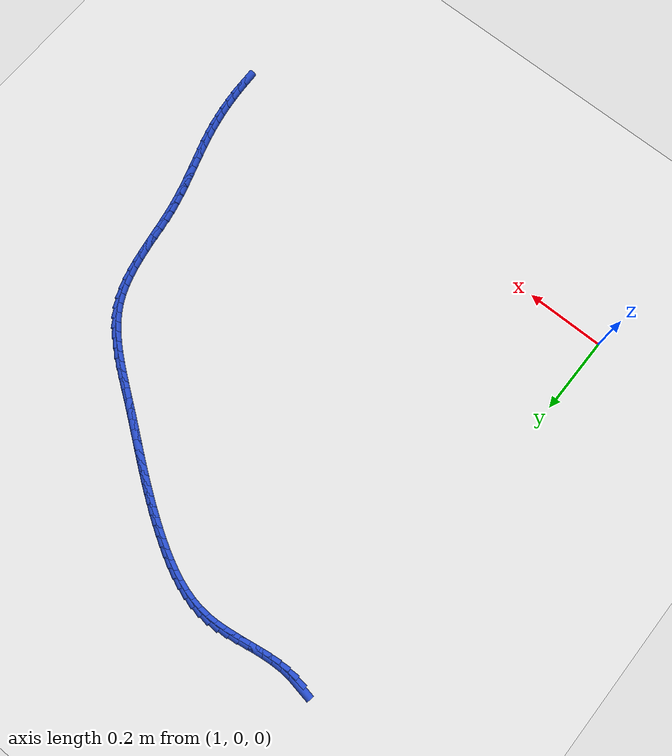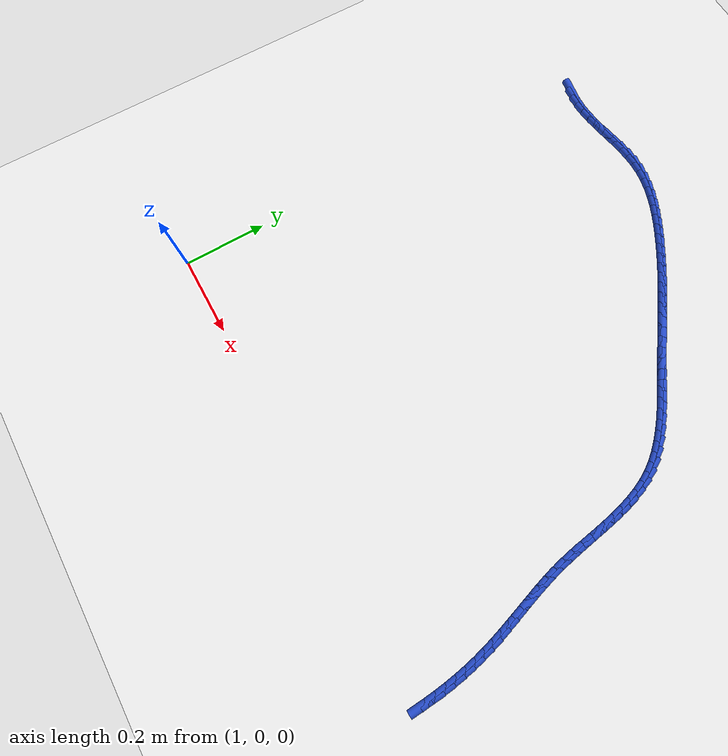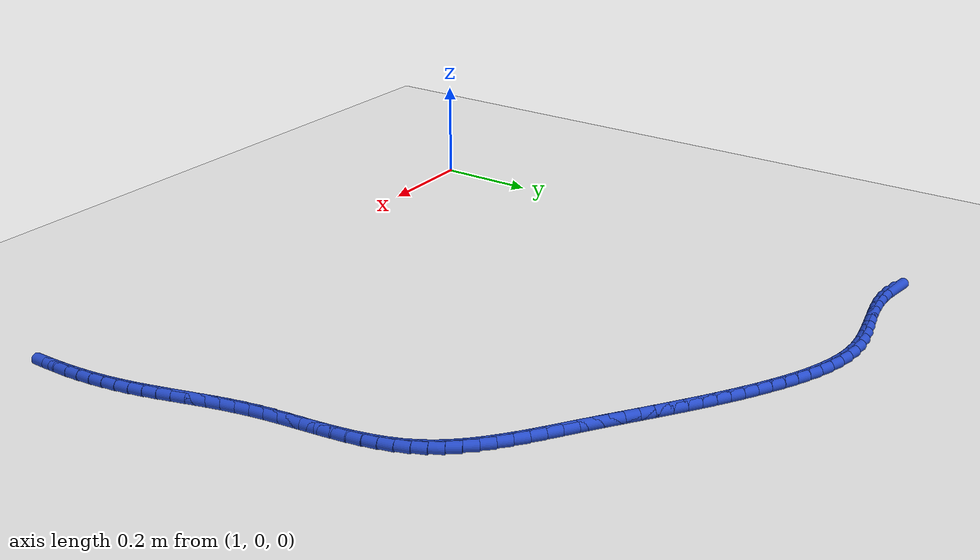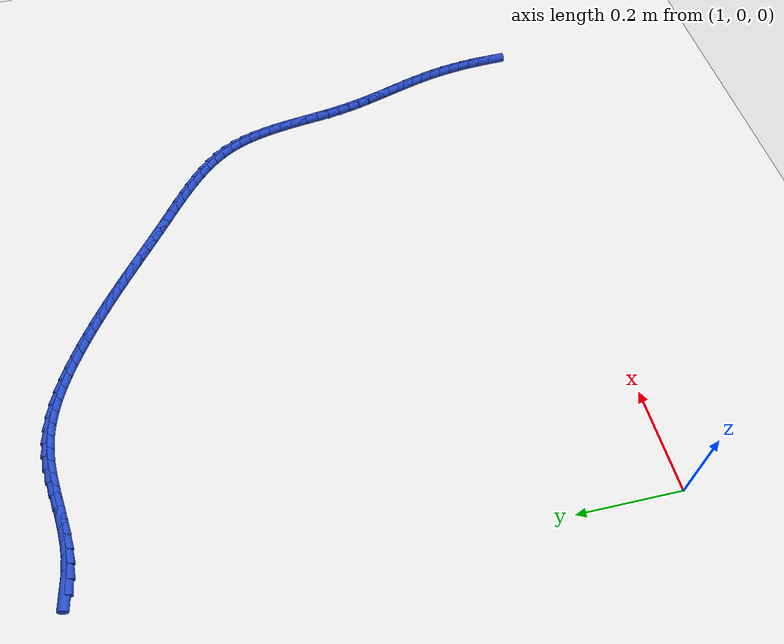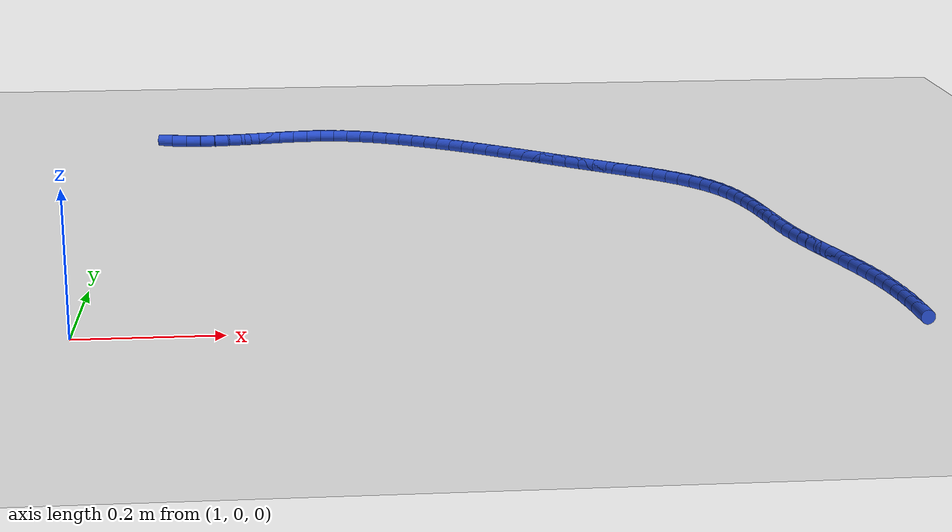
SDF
<sdf version="1.6">
 <world name="default">
  <model name="ground_plane">
   <static>1</static>
   <link name="link">
    <collision name="collision">
     <geometry><plane><normal>0 0 1</normal><size>100 100</size></plane></geometry>
     <surface><friction><ode><mu>100</mu><mu2>50</mu2></ode></friction></surface>
    </collision>
    <visual name="visual">
     <cast_shadows>0</cast_shadows>
     <geometry><plane><normal>0 0 1</normal><size>100 100</size></plane></geometry>
     <material>
      <script><uri>file://media/materials/scripts/gazebo.material</uri><name>Gazebo/WhiteGlow</name></script>
     </material>
    </visual>
   </link>
  </model>
  <model name="line">
   <link name="link_67">
    <pose>1.0657967718095103 1.0612530935548805 0.01 0 1.57 -0.163326018810447</pose>
    <collision name="collision">
     <geometry><cylinder><radius>0.01</radius><length>0.08</length></cylinder></geometry>
    </collision>
    <visual name="visual">
     <material>
      <script><name>Gazebo/Blue</name><uri>file://media/materials/scripts/gazebo.material</uri></script>
     </material>
     <geometry><cylinder><radius>0.01</radius><length>0.08</length></cylinder></geometry>
    </visual>
   </link>
   <link name="link_68">
    <pose>1.0908046888551215 1.0571319402369077 0.01 0 1.57 -0.052604988895848644</pose>
    <collision name="collision">
     <geometry><cylinder><radius>0.01</radius><length>0.08</length></cylinder></geometry>
    </collision>
    <visual name="visual">
     <material>
      <script><name>Gazebo/Blue</name><uri>file://media/materials/scripts/gazebo.material</uri></script>
     </material>
     <geometry><cylinder><radius>0.01</radius><length>0.08</length></cylinder></geometry>
    </visual>
   </link>
   <link name="link_69">
    <pose>1.1160145634118857 1.0558045504179205 0.01 0 1.57 0.0354385753306904</pose>
    <collision name="collision">
     <geometry><cylinder><radius>0.01</radius><length>0.08</length></cylinder></geometry>
    </collision>
    <visual name="visual">
     <material>
      <script><name>Gazebo/Blue</name><uri>file://media/materials/scripts/gazebo.material</uri></script>
     </material>
     <geometry><cylinder><radius>0.01</radius><length>0.08</length></cylinder></geometry>
    </visual>
   </link>
   <link name="link_70">
    <pose>1.1413829994484728 1.056703948196631 0.01 0 1.57 0.10009015704699996</pose>
    <collision name="collision">
     <geometry><cylinder><radius>0.01</radius><length>0.08</length></cylinder></geometry>
    </collision>
    <visual name="visual">
     <material>
      <script><name>Gazebo/Blue</name><uri>file://media/materials/scripts/gazebo.material</uri></script>
     </material>
     <geometry><cylinder><radius>0.01</radius><length>0.08</length></cylinder></geometry>
    </visual>
   </link>
   <link name="link_71">
    <pose>1.1668666009335533 1.059263157671752 0.01 0 1.57 0.1419460630791456</pose>
    <collision name="collision">
     <geometry><cylinder><radius>0.01</radius><length>0.08</length></cylinder></geometry>
    </collision>
    <visual name="visual">
     <material>
      <script><name>Gazebo/Blue</name><uri>file://media/materials/scripts/gazebo.material</uri></script>
     </material>
     <geometry><cylinder><radius>0.01</radius><length>0.08</length></cylinder></geometry>
    </visual>
   </link>
   <link name="link_72">
    <pose>1.1924219718357978 1.0629152029419962 0.01 0 1.57 0.16187425932820532</pose>
    <collision name="collision">
     <geometry><cylinder><radius>0.01</radius><length>0.08</length></cylinder></geometry>
    </collision>
    <visual name="visual">
     <material>
      <script><name>Gazebo/Blue</name><uri>file://media/materials/scripts/gazebo.material</uri></script>
     </material>
     <geometry><cylinder><radius>0.01</radius><length>0.08</length></cylinder></geometry>
    </visual>
   </link>
   <link name="link_73">
    <pose>1.2180057161238764 1.0670931081060764 0.01 0 1.57 0.1604010717937389</pose>
    <collision name="collision">
     <geometry><cylinder><radius>0.01</radius><length>0.08</length></cylinder></geometry>
    </collision>
    <visual name="visual">
     <material>
      <script><name>Gazebo/Blue</name><uri>file://media/materials/scripts/gazebo.material</uri></script>
     </material>
     <geometry><cylinder><radius>0.01</radius><length>0.08</length></cylinder></geometry>
    </visual>
   </link>
   <link name="link_74">
    <pose>1.2435744377664593 1.0712298972627052 0.01 0 1.57 0.13745217122147418</pose>
    <collision name="collision">
     <geometry><cylinder><radius>0.01</radius><length>0.08</length></cylinder></geometry>
    </collision>
    <visual name="visual">
     <material>
      <script><name>Gazebo/Blue</name><uri>file://media/materials/scripts/gazebo.material</uri></script>
     </material>
     <geometry><cylinder><radius>0.01</radius><length>0.08</length></cylinder></geometry>
    </visual>
   </link>
   <link name="link_75">
    <pose>1.2690847407322174 1.0747585945105953 0.01 0 1.57 0.09236803059131285</pose>
    <collision name="collision">
     <geometry><cylinder><radius>0.01</radius><length>0.08</length></cylinder></geometry>
    </collision>
    <visual name="visual">
     <material>
      <script><name>Gazebo/Blue</name><uri>file://media/materials/scripts/gazebo.material</uri></script>
     </material>
     <geometry><cylinder><radius>0.01</radius><length>0.08</length></cylinder></geometry>
    </visual>
   </link>
   <link name="link_76">
    <pose>1.2944932289898206 1.0771122239484594 0.01 0 1.57 0.02420375957399733</pose>
    <collision name="collision">
     <geometry><cylinder><radius>0.01</radius><length>0.08</length></cylinder></geometry>
    </collision>
    <visual name="visual">
     <material>
      <script><name>Gazebo/Blue</name><uri>file://media/materials/scripts/gazebo.material</uri></script>
     </material>
     <geometry><cylinder><radius>0.01</radius><length>0.08</length></cylinder></geometry>
    </visual>
   </link>
   <link name="link_77">
    <pose>1.3197565065079386 1.0777238096750101 0.01 0 1.57 -0.06649448323543133</pose>
    <collision name="collision">
     <geometry><cylinder><radius>0.01</radius><length>0.08</length></cylinder></geometry>
    </collision>
    <visual name="visual">
     <material>
      <script><name>Gazebo/Blue</name><uri>file://media/materials/scripts/gazebo.material</uri></script>
     </material>
     <geometry><cylinder><radius>0.01</radius><length>0.08</length></cylinder></geometry>
    </visual>
   </link>
   <link name="link_78">
    <pose>1.3448314190899777 1.076054004571463 0.01 0 1.57 -0.16142711639501295</pose>
    <collision name="collision">
     <geometry><cylinder><radius>0.01</radius><length>0.08</length></cylinder></geometry>
    </collision>
    <visual name="visual">
     <material>
      <script><name>Gazebo/Blue</name><uri>file://media/materials/scripts/gazebo.material</uri></script>
     </material>
     <geometry><cylinder><radius>0.01</radius><length>0.08</length></cylinder></geometry>
    </visual>
   </link>
   <link name="link_79">
    <pose>1.3696787015859937 1.0720077716557193 0.01 0 1.57 -0.24548618376894532</pose>
    <collision name="collision">
     <geometry><cylinder><radius>0.01</radius><length>0.08</length></cylinder></geometry>
    </collision>
    <visual name="visual">
     <material>
      <script><name>Gazebo/Blue</name><uri>file://media/materials/scripts/gazebo.material</uri></script>
     </material>
     <geometry><cylinder><radius>0.01</radius><length>0.08</length></cylinder></geometry>
    </visual>
   </link>
   <link name="link_80">
    <pose>1.3942622273056355 1.0658486321052978 0.01 0 1.57 -0.31817789167550947</pose>
    <collision name="collision">
     <geometry><cylinder><radius>0.01</radius><length>0.08</length></cylinder></geometry>
    </collision>
    <visual name="visual">
     <material>
      <script><name>Gazebo/Blue</name><uri>file://media/materials/scripts/gazebo.material</uri></script>
     </material>
     <geometry><cylinder><radius>0.01</radius><length>0.08</length></cylinder></geometry>
    </visual>
   </link>
   <link name="link_81">
    <pose>1.418545959108762 1.0578503378997623 0.01 0 1.57 -0.37994960598173194</pose>
    <collision name="collision">
     <geometry><cylinder><radius>0.01</radius><length>0.08</length></cylinder></geometry>
    </collision>
    <visual name="visual">
     <material>
      <script><name>Gazebo/Blue</name><uri>file://media/materials/scripts/gazebo.material</uri></script>
     </material>
     <geometry><cylinder><radius>0.01</radius><length>0.08</length></cylinder></geometry>
    </visual>
   </link>
   <link name="link_82">
    <pose>1.442493859855232 1.0482866410186773 0.01 0 1.57 -0.43150180645367564</pose>
    <collision name="collision">
     <geometry><cylinder><radius>0.01</radius><length>0.08</length></cylinder></geometry>
    </collision>
    <visual name="visual">
     <material>
      <script><name>Gazebo/Blue</name><uri>file://media/materials/scripts/gazebo.material</uri></script>
     </material>
     <geometry><cylinder><radius>0.01</radius><length>0.08</length></cylinder></geometry>
    </visual>
   </link>
   <link name="link_83">
    <pose>1.4660698924049045 1.0374312934416057 0.01 0 1.57 -0.4735832094723356</pose>
    <collision name="collision">
     <geometry><cylinder><radius>0.01</radius><length>0.08</length></cylinder></geometry>
    </collision>
    <visual name="visual">
     <material>
      <script><name>Gazebo/Blue</name><uri>file://media/materials/scripts/gazebo.material</uri></script>
     </material>
     <geometry><cylinder><radius>0.01</radius><length>0.08</length></cylinder></geometry>
    </visual>
   </link>
   <link name="link_84">
    <pose>1.4892380196176391 1.0255580471481125 0.01 0 1.57 -0.5068579016628197</pose>
    <collision name="collision">
     <geometry><cylinder><radius>0.01</radius><length>0.08</length></cylinder></geometry>
    </collision>
    <visual name="visual">
     <material>
      <script><name>Gazebo/Blue</name><uri>file://media/materials/scripts/gazebo.material</uri></script>
     </material>
     <geometry><cylinder><radius>0.01</radius><length>0.08</length></cylinder></geometry>
    </visual>
   </link>
   <link name="link_85">
    <pose>1.511962204353295 1.012940654117761 0.01 0 1.57 -0.532018254938925</pose>
    <collision name="collision">
     <geometry><cylinder><radius>0.01</radius><length>0.08</length></cylinder></geometry>
    </collision>
    <visual name="visual">
     <material>
      <script><name>Gazebo/Blue</name><uri>file://media/materials/scripts/gazebo.material</uri></script>
     </material>
     <geometry><cylinder><radius>0.01</radius><length>0.08</length></cylinder></geometry>
    </visual>
   </link>
   <link name="link_86">
    <pose>1.534209465067876 0.9998452191120615 0.01 0 1.57 -0.5525723637971851</pose>
    <collision name="collision">
     <geometry><cylinder><radius>0.01</radius><length>0.08</length></cylinder></geometry>
    </collision>
    <visual name="visual">
     <material>
      <script><name>Gazebo/Blue</name><uri>file://media/materials/scripts/gazebo.material</uri></script>
     </material>
     <geometry><cylinder><radius>0.01</radius><length>0.08</length></cylinder></geometry>
    </visual>
   </link>
   <link name="link_87">
    <pose>1.555998235010774 0.9864091714664015 0.01 0 1.57 -0.571155265082946</pose>
    <collision name="collision">
     <geometry><cylinder><radius>0.01</radius><length>0.08</length></cylinder></geometry>
    </collision>
    <visual name="visual">
     <material>
      <script><name>Gazebo/Blue</name><uri>file://media/materials/scripts/gazebo.material</uri></script>
     </material>
     <geometry><cylinder><radius>0.01</radius><length>0.08</length></cylinder></geometry>
    </visual>
   </link>
   <link name="link_88">
    <pose>1.5773896572800647 0.9726630508912654 0.01 0 1.57 -0.5877139115601648</pose>
    <collision name="collision">
     <geometry><cylinder><radius>0.01</radius><length>0.08</length></cylinder></geometry>
    </collision>
    <visual name="visual">
     <material>
      <script><name>Gazebo/Blue</name><uri>file://media/materials/scripts/gazebo.material</uri></script>
     </material>
     <geometry><cylinder><radius>0.01</radius><length>0.08</length></cylinder></geometry>
    </visual>
   </link>
   <link name="link_89">
    <pose>1.5984461707804634 0.9586341540913725 0.01 0 1.57 -0.6021352877129944</pose>
    <collision name="collision">
     <geometry><cylinder><radius>0.01</radius><length>0.08</length></cylinder></geometry>
    </collision>
    <visual name="visual">
     <material>
      <script><name>Gazebo/Blue</name><uri>file://media/materials/scripts/gazebo.material</uri></script>
     </material>
     <geometry><cylinder><radius>0.01</radius><length>0.08</length></cylinder></geometry>
    </visual>
   </link>
   <link name="link_90">
    <pose>1.6192302144166846 0.9443497777714427 0.01 0 1.57 -0.6143295985337573</pose>
    <collision name="collision">
     <geometry><cylinder><radius>0.01</radius><length>0.08</length></cylinder></geometry>
    </collision>
    <visual name="visual">
     <material>
      <script><name>Gazebo/Blue</name><uri>file://media/materials/scripts/gazebo.material</uri></script>
     </material>
     <geometry><cylinder><radius>0.01</radius><length>0.08</length></cylinder></geometry>
    </visual>
   </link>
   <link name="link_91">
    <pose>1.6398042270934419 0.9298372186361951 0.01 0 1.57 -0.6242300928528152</pose>
    <collision name="collision">
     <geometry><cylinder><radius>0.01</radius><length>0.08</length></cylinder></geometry>
    </collision>
    <visual name="visual">
     <material>
      <script><name>Gazebo/Blue</name><uri>file://media/materials/scripts/gazebo.material</uri></script>
     </material>
     <geometry><cylinder><radius>0.01</radius><length>0.08</length></cylinder></geometry>
    </visual>
   </link>
   <link name="link_92">
    <pose>1.6602306477154514 0.9151237733903489 0.01 0 1.57 -0.6317924586829639</pose>
    <collision name="collision">
     <geometry><cylinder><radius>0.01</radius><length>0.08</length></cylinder></geometry>
    </collision>
    <visual name="visual">
     <material>
      <script><name>Gazebo/Blue</name><uri>file://media/materials/scripts/gazebo.material</uri></script>
     </material>
     <geometry><cylinder><radius>0.01</radius><length>0.08</length></cylinder></geometry>
    </visual>
   </link>
   <link name="link_93">
    <pose>1.6805719151874274 0.9002367387386239 0.01 0 1.57 -0.6369939364894709</pose>
    <collision name="collision">
     <geometry><cylinder><radius>0.01</radius><length>0.08</length></cylinder></geometry>
    </collision>
    <visual name="visual">
     <material>
      <script><name>Gazebo/Blue</name><uri>file://media/materials/scripts/gazebo.material</uri></script>
     </material>
     <geometry><cylinder><radius>0.01</radius><length>0.08</length></cylinder></geometry>
    </visual>
   </link>
   <link name="link_94">
    <pose>1.7008904684140844 0.8852034113857394 0.01 0 1.57 -0.6398322785250471</pose>
    <collision name="collision">
     <geometry><cylinder><radius>0.01</radius><length>0.08</length></cylinder></geometry>
    </collision>
    <visual name="visual">
     <material>
      <script><name>Gazebo/Blue</name><uri>file://media/materials/scripts/gazebo.material</uri></script>
     </material>
     <geometry><cylinder><radius>0.01</radius><length>0.08</length></cylinder></geometry>
    </visual>
   </link>
   <link name="link_95">
    <pose>1.7212487463001371 0.8700510880364147 0.01 0 1.57 -0.6403246547230192</pose>
    <collision name="collision">
     <geometry><cylinder><radius>0.01</radius><length>0.08</length></cylinder></geometry>
    </collision>
    <visual name="visual">
     <material>
      <script><name>Gazebo/Blue</name><uri>file://media/materials/scripts/gazebo.material</uri></script>
     </material>
     <geometry><cylinder><radius>0.01</radius><length>0.08</length></cylinder></geometry>
    </visual>
   </link>
   <link name="link_96">
    <pose>1.7417091877503006 0.8548070653953695 0.01 0 1.57 -0.6385065730186528</pose>
    <collision name="collision">
     <geometry><cylinder><radius>0.01</radius><length>0.08</length></cylinder></geometry>
    </collision>
    <visual name="visual">
     <material>
      <script><name>Gazebo/Blue</name><uri>file://media/materials/scripts/gazebo.material</uri></script>
     </material>
     <geometry><cylinder><radius>0.01</radius><length>0.08</length></cylinder></geometry>
    </visual>
   </link>
   <link name="link_97">
    <pose>1.7623342316692892 0.8394986401673232 0.01 0 1.57 -0.6344308485921261</pose>
    <collision name="collision">
     <geometry><cylinder><radius>0.01</radius><length>0.08</length></cylinder></geometry>
    </collision>
    <visual name="visual">
     <material>
      <script><name>Gazebo/Blue</name><uri>file://media/materials/scripts/gazebo.material</uri></script>
     </material>
     <geometry><cylinder><radius>0.01</radius><length>0.08</length></cylinder></geometry>
    </visual>
   </link>
   <link name="link_98">
    <pose>1.7831863169618176 0.824153109056995 0.01 0 1.57 -0.628608501689054</pose>
    <collision name="collision">
     <geometry><cylinder><radius>0.01</radius><length>0.08</length></cylinder></geometry>
    </collision>
    <visual name="visual">
     <material>
      <script><name>Gazebo/Blue</name><uri>file://media/materials/scripts/gazebo.material</uri></script>
     </material>
     <geometry><cylinder><radius>0.01</radius><length>0.08</length></cylinder></geometry>
    </visual>
   </link>
   <link name="link_99">
    <pose>1.804316000010717 0.8087921325309066 0.01 0 1.57 -0.6275224753653147</pose>
    <collision name="collision">
     <geometry><cylinder><radius>0.01</radius><length>0.08</length></cylinder></geometry>
    </collision>
    <visual name="visual">
     <material>
      <script><name>Gazebo/Blue</name><uri>file://media/materials/scripts/gazebo.material</uri></script>
     </material>
     <geometry><cylinder><radius>0.01</radius><length>0.08</length></cylinder></geometry>
    </visual>
   </link>
   <link name="link_100">
    <pose>1.8255994653065617 0.7933546612125523 0.01 0 1.57 -0.6359704507851976</pose>
    <collision name="collision">
     <geometry><cylinder><radius>0.01</radius><length>0.08</length></cylinder></geometry>
    </collision>
    <visual name="visual">
     <material>
      <script><name>Gazebo/Blue</name><uri>file://media/materials/scripts/gazebo.material</uri></script>
     </material>
     <geometry><cylinder><radius>0.01</radius><length>0.08</length></cylinder></geometry>
    </visual>
   </link>
   <link name="link_101">
    <pose>1.8467803963566243 0.7777167965162552 0.01 0 1.57 -0.6541634719165439</pose>
    <collision name="collision">
     <geometry><cylinder><radius>0.01</radius><length>0.08</length></cylinder></geometry>
    </collision>
    <visual name="visual">
     <material>
      <script><name>Gazebo/Blue</name><uri>file://media/materials/scripts/gazebo.material</uri></script>
     </material>
     <geometry><cylinder><radius>0.01</radius><length>0.08</length></cylinder></geometry>
    </visual>
   </link>
   <link name="link_102">
    <pose>1.8675991667753065 0.7617530698744102 0.01 0 1.57 -0.6824658990812795</pose>
    <collision name="collision">
     <geometry><cylinder><radius>0.01</radius><length>0.08</length></cylinder></geometry>
    </collision>
    <visual name="visual">
     <material>
      <script><name>Gazebo/Blue</name><uri>file://media/materials/scripts/gazebo.material</uri></script>
     </material>
     <geometry><cylinder><radius>0.01</radius><length>0.08</length></cylinder></geometry>
    </visual>
   </link>
   <link name="link_103">
    <pose>1.887796150177008 0.7453380127194101 0.01 0 1.57 -0.7214842749751662</pose>
    <collision name="collision">
     <geometry><cylinder><radius>0.01</radius><length>0.08</length></cylinder></geometry>
    </collision>
    <visual name="visual">
     <material>
      <script><name>Gazebo/Blue</name><uri>file://media/materials/scripts/gazebo.material</uri></script>
     </material>
     <geometry><cylinder><radius>0.01</radius><length>0.08</length></cylinder></geometry>
    </visual>
   </link>
   <link name="link_104">
    <pose>1.9071117201761298 0.7283461564836493 0.01 0 1.57 -0.7720054778882527</pose>
    <collision name="collision">
     <geometry><cylinder><radius>0.01</radius><length>0.08</length></cylinder></geometry>
    </collision>
    <visual name="visual">
     <material>
      <script><name>Gazebo/Blue</name><uri>file://media/materials/scripts/gazebo.material</uri></script>
     </material>
     <geometry><cylinder><radius>0.01</radius><length>0.08</length></cylinder></geometry>
    </visual>
   </link>
   <link name="link_105">
    <pose>1.9252862503870718 0.7106520325995217 0.01 0 1.57 -0.8348820350865378</pose>
    <collision name="collision">
     <geometry><cylinder><radius>0.01</radius><length>0.08</length></cylinder></geometry>
    </collision>
    <visual name="visual">
     <material>
      <script><name>Gazebo/Blue</name><uri>file://media/materials/scripts/gazebo.material</uri></script>
     </material>
     <geometry><cylinder><radius>0.01</radius><length>0.08</length></cylinder></geometry>
    </visual>
   </link>
   <link name="link_106">
    <pose>1.9420601144242362 0.6921301724994214 0.01 0 1.57 -0.9108322846294211</pose>
    <collision name="collision">
     <geometry><cylinder><radius>0.01</radius><length>0.08</length></cylinder></geometry>
    </collision>
    <visual name="visual">
     <material>
      <script><name>Gazebo/Blue</name><uri>file://media/materials/scripts/gazebo.material</uri></script>
     </material>
     <geometry><cylinder><radius>0.01</radius><length>0.08</length></cylinder></geometry>
    </visual>
   </link>
   <link name="link_107">
    <pose>1.9571736859020223 0.6726551076157421 0.01 0 1.57 -1.0001255537962555</pose>
    <collision name="collision">
     <geometry><cylinder><radius>0.01</radius><length>0.08</length></cylinder></geometry>
    </collision>
    <visual name="visual">
     <material>
      <script><name>Gazebo/Blue</name><uri>file://media/materials/scripts/gazebo.material</uri></script>
     </material>
     <geometry><cylinder><radius>0.01</radius><length>0.08</length></cylinder></geometry>
    </visual>
   </link>
   <link name="link_108">
    <pose>1.9703674191430294 0.6521014099876165 0.01 0 1.57 -1.0968074893364088</pose>
    <collision name="collision">
     <geometry><cylinder><radius>0.01</radius><length>0.08</length></cylinder></geometry>
    </collision>
    <visual name="visual">
     <material>
      <script><name>Gazebo/Blue</name><uri>file://media/materials/scripts/gazebo.material</uri></script>
     </material>
     <geometry><cylinder><radius>0.01</radius><length>0.08</length></cylinder></geometry>
    </visual>
   </link>
   <link name="link_109">
    <pose>1.981498813119086 0.630402540361948 0.01 0 1.57 -1.183331613696243</pose>
    <collision name="collision">
     <geometry><cylinder><radius>0.01</radius><length>0.08</length></cylinder></geometry>
    </collision>
    <visual name="visual">
     <material>
      <script><name>Gazebo/Blue</name><uri>file://media/materials/scripts/gazebo.material</uri></script>
     </material>
     <geometry><cylinder><radius>0.01</radius><length>0.08</length></cylinder></geometry>
    </visual>
   </link>
   <link name="link_110">
    <pose>1.9907764128645757 0.6076685813912769 0.01 0 1.57 -1.255820362796635</pose>
    <collision name="collision">
     <geometry><cylinder><radius>0.01</radius><length>0.08</length></cylinder></geometry>
    </collision>
    <visual name="visual">
     <material>
      <script><name>Gazebo/Blue</name><uri>file://media/materials/scripts/gazebo.material</uri></script>
     </material>
     <geometry><cylinder><radius>0.01</radius><length>0.08</length></cylinder></geometry>
    </visual>
   </link>
   <link name="link_111">
    <pose>1.9984743009656232 0.5840425896552555 0.01 0 1.57 -1.3143248232830003</pose>
    <collision name="collision">
     <geometry><cylinder><radius>0.01</radius><length>0.08</length></cylinder></geometry>
    </collision>
    <visual name="visual">
     <material>
      <script><name>Gazebo/Blue</name><uri>file://media/materials/scripts/gazebo.material</uri></script>
     </material>
     <geometry><cylinder><radius>0.01</radius><length>0.08</length></cylinder></geometry>
    </visual>
   </link>
   <link name="link_112">
    <pose>2.0048665600083497 0.5596676217335347 0.01 0 1.57 -1.359409638927786</pose>
    <collision name="collision">
     <geometry><cylinder><radius>0.01</radius><length>0.08</length></cylinder></geometry>
    </collision>
    <visual name="visual">
     <material>
      <script><name>Gazebo/Blue</name><uri>file://media/materials/scripts/gazebo.material</uri></script>
     </material>
     <geometry><cylinder><radius>0.01</radius><length>0.08</length></cylinder></geometry>
    </visual>
   </link>
   <link name="link_113">
    <pose>2.0102272725788812 0.5346867342057676 0.01 0 1.57 -1.3918137235125843</pose>
    <collision name="collision">
     <geometry><cylinder><radius>0.01</radius><length>0.08</length></cylinder></geometry>
    </collision>
    <visual name="visual">
     <material>
      <script><name>Gazebo/Blue</name><uri>file://media/materials/scripts/gazebo.material</uri></script>
     </material>
     <geometry><cylinder><radius>0.01</radius><length>0.08</length></cylinder></geometry>
    </visual>
   </link>
   <link name="link_114">
    <pose>2.0148305212633404 0.5092429836516045 0.01 0 1.57 -1.4122281765429536</pose>
    <collision name="collision">
     <geometry><cylinder><radius>0.01</radius><length>0.08</length></cylinder></geometry>
    </collision>
    <visual name="visual">
     <material>
      <script><name>Gazebo/Blue</name><uri>file://media/materials/scripts/gazebo.material</uri></script>
     </material>
     <geometry><cylinder><radius>0.01</radius><length>0.08</length></cylinder></geometry>
    </visual>
   </link>
   <link name="link_115">
    <pose>2.018950388647852 0.48347942665069793 0.01 0 1.57 -1.4211704227515187</pose>
    <collision name="collision">
     <geometry><cylinder><radius>0.01</radius><length>0.08</length></cylinder></geometry>
    </collision>
    <visual name="visual">
     <material>
      <script><name>Gazebo/Blue</name><uri>file://media/materials/scripts/gazebo.material</uri></script>
     </material>
     <geometry><cylinder><radius>0.01</radius><length>0.08</length></cylinder></geometry>
    </visual>
   </link>
   <link name="link_116">
    <pose>2.0228609573185388 0.45753911978269923 0.01 0 1.57 -1.418923639977234</pose>
    <collision name="collision">
     <geometry><cylinder><radius>0.01</radius><length>0.08</length></cylinder></geometry>
    </collision>
    <visual name="visual">
     <material>
      <script><name>Gazebo/Blue</name><uri>file://media/materials/scripts/gazebo.material</uri></script>
     </material>
     <geometry><cylinder><radius>0.01</radius><length>0.08</length></cylinder></geometry>
    </visual>
   </link>
   <link name="link_117">
    <pose>2.026836309861525 0.43156511962726046 0.01 0 1.57 -1.4055180137649979</pose>
    <collision name="collision">
     <geometry><cylinder><radius>0.01</radius><length>0.08</length></cylinder></geometry>
    </collision>
    <visual name="visual">
     <material>
      <script><name>Gazebo/Blue</name><uri>file://media/materials/scripts/gazebo.material</uri></script>
     </material>
     <geometry><cylinder><radius>0.01</radius><length>0.08</length></cylinder></geometry>
    </visual>
   </link>
   <link name="link_118">
    <pose>2.031150528862935 0.4057004827640333 0.01 0 1.57 -1.3807424621480102</pose>
    <collision name="collision">
     <geometry><cylinder><radius>0.01</radius><length>0.08</length></cylinder></geometry>
    </collision>
    <visual name="visual">
     <material>
      <script><name>Gazebo/Blue</name><uri>file://media/materials/scripts/gazebo.material</uri></script>
     </material>
     <geometry><cylinder><radius>0.01</radius><length>0.08</length></cylinder></geometry>
    </visual>
   </link>
   <link name="link_119">
    <pose>2.036077696908891 0.3800882657726696 0.01 0 1.57 -1.3465278271291181</pose>
    <collision name="collision">
     <geometry><cylinder><radius>0.01</radius><length>0.08</length></cylinder></geometry>
    </collision>
    <visual name="visual">
     <material>
      <script><name>Gazebo/Blue</name><uri>file://media/materials/scripts/gazebo.material</uri></script>
     </material>
     <geometry><cylinder><radius>0.01</radius><length>0.08</length></cylinder></geometry>
    </visual>
   </link>
   <link name="link_120">
    <pose>2.0418355844360176 0.35484607305809335 0.01 0 1.57 -1.3154296922271171</pose>
    <collision name="collision">
     <geometry><cylinder><radius>0.01</radius><length>0.08</length></cylinder></geometry>
    </collision>
    <visual name="visual">
     <material>
      <script><name>Gazebo/Blue</name><uri>file://media/materials/scripts/gazebo.material</uri></script>
     </material>
     <geometry><cylinder><radius>0.01</radius><length>0.08</length></cylinder></geometry>
    </visual>
   </link>
   <link name="link_121">
    <pose>2.0483344535726196 0.32995252027656935 0.01 0 1.57 -1.291999431122512</pose>
    <collision name="collision">
     <geometry><cylinder><radius>0.01</radius><length>0.08</length></cylinder></geometry>
    </collision>
    <visual name="visual">
     <material>
      <script><name>Gazebo/Blue</name><uri>file://media/materials/scripts/gazebo.material</uri></script>
     </material>
     <geometry><cylinder><radius>0.01</radius><length>0.08</length></cylinder></geometry>
    </visual>
   </link>
   <link name="link_122">
    <pose>2.055380122969954 0.3053390163332344 0.01 0 1.57 -1.2764254644793167</pose>
    <collision name="collision">
     <geometry><cylinder><radius>0.01</radius><length>0.08</length></cylinder></geometry>
    </collision>
    <visual name="visual">
     <material>
      <script><name>Gazebo/Blue</name><uri>file://media/materials/scripts/gazebo.material</uri></script>
     </material>
     <geometry><cylinder><radius>0.01</radius><length>0.08</length></cylinder></geometry>
    </visual>
   </link>
   <link name="link_123">
    <pose>2.0627783256505228 0.2809369314304221 0.01 0 1.57 -1.2688340828303344</pose>
    <collision name="collision">
     <geometry><cylinder><radius>0.01</radius><length>0.08</length></cylinder></geometry>
    </collision>
    <visual name="visual">
     <material>
      <script><name>Gazebo/Blue</name><uri>file://media/materials/scripts/gazebo.material</uri></script>
     </material>
     <geometry><cylinder><radius>0.01</radius><length>0.08</length></cylinder></geometry>
    </visual>
   </link>
   <link name="link_124">
    <pose>2.070334794636828 0.25667763577046515 0.01 0 1.57 -1.2693204024454277</pose>
    <collision name="collision">
     <geometry><cylinder><radius>0.01</radius><length>0.08</length></cylinder></geometry>
    </collision>
    <visual name="visual">
     <material>
      <script><name>Gazebo/Blue</name><uri>file://media/materials/scripts/gazebo.material</uri></script>
     </material>
     <geometry><cylinder><radius>0.01</radius><length>0.08</length></cylinder></geometry>
    </visual>
   </link>
   <link name="link_125">
    <pose>2.0778552629513714 0.23249249955569742 0.01 0 1.57 -1.2779620858441052</pose>
    <collision name="collision">
     <geometry><cylinder><radius>0.01</radius><length>0.08</length></cylinder></geometry>
    </collision>
    <visual name="visual">
     <material>
      <script><name>Gazebo/Blue</name><uri>file://media/materials/scripts/gazebo.material</uri></script>
     </material>
     <geometry><cylinder><radius>0.01</radius><length>0.08</length></cylinder></geometry>
    </visual>
   </link>
   <link name="link_126">
    <pose>2.0851454636166555 0.20831289298845218 0.01 0 1.57 -1.2948177153433504</pose>
    <collision name="collision">
     <geometry><cylinder><radius>0.01</radius><length>0.08</length></cylinder></geometry>
    </collision>
    <visual name="visual">
     <material>
      <script><name>Gazebo/Blue</name><uri>file://media/materials/scripts/gazebo.material</uri></script>
     </material>
     <geometry><cylinder><radius>0.01</radius><length>0.08</length></cylinder></geometry>
    </visual>
   </link>
   <link name="link_127">
    <pose>2.0920111296551815 0.18407018627106286 0.01 0 1.57 -1.3199087886826952</pose>
    <collision name="collision">
     <geometry><cylinder><radius>0.01</radius><length>0.08</length></cylinder></geometry>
    </collision>
    <visual name="visual">
     <material>
      <script><name>Gazebo/Blue</name><uri>file://media/materials/scripts/gazebo.material</uri></script>
     </material>
     <geometry><cylinder><radius>0.01</radius><length>0.08</length></cylinder></geometry>
    </visual>
   </link>
   <link name="link_128">
    <pose>2.0982579940894523 0.15969574960586289 0.01 0 1.57 -1.3527486388668595</pose>
    <collision name="collision">
     <geometry><cylinder><radius>0.01</radius><length>0.08</length></cylinder></geometry>
    </collision>
    <visual name="visual">
     <material>
      <script><name>Gazebo/Blue</name><uri>file://media/materials/scripts/gazebo.material</uri></script>
     </material>
     <geometry><cylinder><radius>0.01</radius><length>0.08</length></cylinder></geometry>
    </visual>
   </link>
   <link name="link_129">
    <pose>2.103702159343512 0.1351249320520072 0.01 0 1.57 -1.3876846657250241</pose>
    <collision name="collision">
     <geometry><cylinder><radius>0.01</radius><length>0.08</length></cylinder></geometry>
    </collision>
    <visual name="visual">
     <material>
      <script><name>Gazebo/Blue</name><uri>file://media/materials/scripts/gazebo.material</uri></script>
     </material>
     <geometry><cylinder><radius>0.01</radius><length>0.08</length></cylinder></geometry>
    </visual>
   </link>
   <link name="link_130">
    <pose>2.1082913209036898 0.1103435764171465 0.01 0 1.57 -1.4208643708888586</pose>
    <collision name="collision">
     <geometry><cylinder><radius>0.01</radius><length>0.08</length></cylinder></geometry>
    </collision>
    <visual name="visual">
     <material>
      <script><name>Gazebo/Blue</name><uri>file://media/materials/scripts/gazebo.material</uri></script>
     </material>
     <geometry><cylinder><radius>0.01</radius><length>0.08</length></cylinder></geometry>
    </visual>
   </link>
   <link name="link_131">
    <pose>2.11206363205871 0.08537223519228612 0.01 0 1.57 -1.452207365599494</pose>
    <collision name="collision">
     <geometry><cylinder><radius>0.01</radius><length>0.08</length></cylinder></geometry>
    </collision>
    <visual name="visual">
     <material>
      <script><name>Gazebo/Blue</name><uri>file://media/materials/scripts/gazebo.material</uri></script>
     </material>
     <geometry><cylinder><radius>0.01</radius><length>0.08</length></cylinder></geometry>
    </visual>
   </link>
   <link name="link_132">
    <pose>2.1150590243752783 0.06023214321383469 0.01 0 1.57 -1.481723875254658</pose>
    <collision name="collision">
     <geometry><cylinder><radius>0.01</radius><length>0.08</length></cylinder></geometry>
    </collision>
    <visual name="visual">
     <material>
      <script><name>Gazebo/Blue</name><uri>file://media/materials/scripts/gazebo.material</uri></script>
     </material>
     <geometry><cylinder><radius>0.01</radius><length>0.08</length></cylinder></geometry>
    </visual>
   </link>
   <link name="link_133">
    <pose>2.1173174294201003 0.03494453531820098 0.01 0 1.57 -1.5094365975824346</pose>
    <collision name="collision">
     <geometry><cylinder><radius>0.01</radius><length>0.08</length></cylinder></geometry>
    </collision>
    <visual name="visual">
     <material>
      <script><name>Gazebo/Blue</name><uri>file://media/materials/scripts/gazebo.material</uri></script>
     </material>
     <geometry><cylinder><radius>0.01</radius><length>0.08</length></cylinder></geometry>
    </visual>
   </link>
   <link name="link_134">
    <pose>2.1188787787598824 0.009530646341794055 0.01 0 1.57 -1.5353776445390896</pose>
    <collision name="collision">
     <geometry><cylinder><radius>0.01</radius><length>0.08</length></cylinder></geometry>
    </collision>
    <visual name="visual">
     <material>
      <script><name>Gazebo/Blue</name><uri>file://media/materials/scripts/gazebo.material</uri></script>
     </material>
     <geometry><cylinder><radius>0.01</radius><length>0.08</length></cylinder></geometry>
    </visual>
   </link>
  </model>
 </world>
</sdf>
